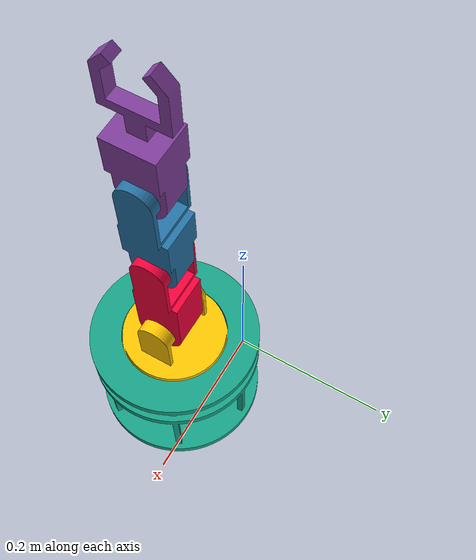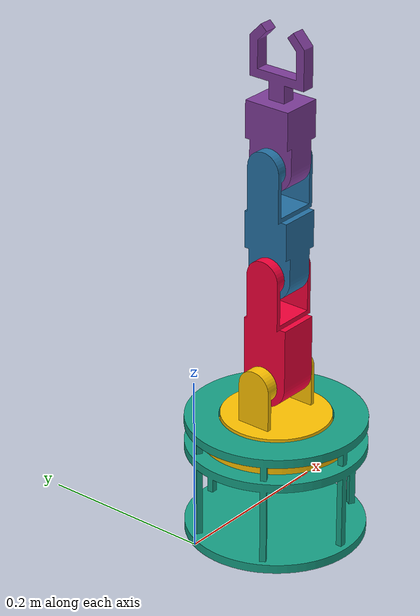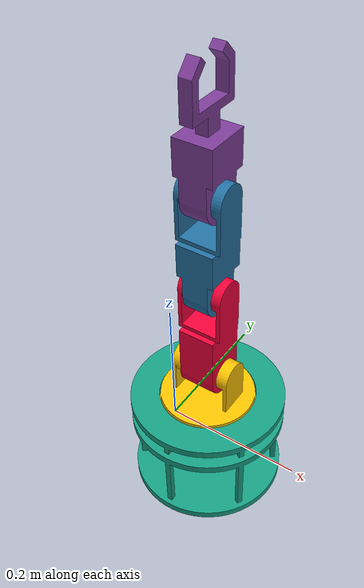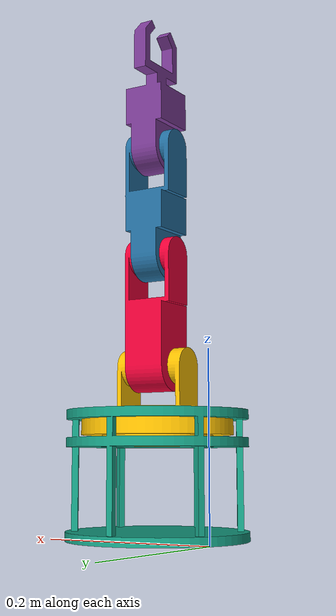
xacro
<?xml version="1.0"?>
<robot
  name="project_arm_1" xmlns:xacro="http://www.ros.org/wiki/xacro">

  <!-- Import all Gazebo-customization elements, including Gazebo colors -->
  <xacro:include filename="$(find project_arm_1)/urdf/project_arm_1.gazebo"/>

   <!-- Used for fixing robot to Gazebo 'base_link' -->
  <link name="world"/>

  <joint name="fixed" type="fixed">
    <parent link="world"/>
    <child link="base_robot"/>
  </joint>

  <link
    name="base_robot">
    <inertial>
      <origin
        xyz="0.087847 0.068109 0.042187"
        rpy="0 0 0" />
      <mass
        value="0.72938" />
      <inertia
        ixx="0.0046602"
        ixy="-1.6887E-19"
        ixz="3.379E-19"
        iyy="0.0044952"
        iyz="3.2874E-20"
        izz="0.0046602" />
    </inertial>
    <visual>
      <origin
        xyz="0 0 0"
        rpy="0 0 0" />
      <geometry>
        <mesh
          filename="package://project_arm_1/meshes/base_robot.STL" />
      </geometry>
      <material
        name="">
        <color
          rgba="0.08627 0.6274 0.5215 1" />
      </material>
    </visual>
    <collision>
      <origin
        xyz="0 0 0"
        rpy="0 0 0" />
      <geometry>
        <mesh
          filename="package://project_arm_1/meshes/base_robot.STL" />
      </geometry>
    </collision>
  </link>
  <link
    name="link_1">
    <inertial>
      <origin
        xyz="1.3878E-17 0 0.026561"
        rpy="0 0 0" />
      <mass
        value="0.72688" />
      <inertia
        ixx="0.0012487"
        ixy="7.2378E-22"
        ixz="2.3667E-20"
        iyy="0.0013043"
        iyz="-4.708E-20"
        izz="0.0018887" />
    </inertial>
    <visual>
      <origin
        xyz="0 0 0"
        rpy="0 0 0" />
      <geometry>
        <mesh
          filename="package://project_arm_1/meshes/link_1.STL" />
      </geometry>
      <material
        name="">
        <color
          rgba="0.99999 0.76471 1E-05 1" />
      </material>
    </visual>
    <collision>
      <origin
        xyz="0 0 0"
        rpy="0 0 0" />
      <geometry>
        <mesh
          filename="package://project_arm_1/meshes/link_1.STL" />
      </geometry>
    </collision>
  </link>
  <joint
    name="joint_link_1"
    type="continuous">
    <origin
      xyz="0.087847 -0.042187 0.1015"
      rpy="0 0 0" />
    <parent
      link="base_robot" />
    <child
      link="link_1" />
    <axis
      xyz="0 0 1" />
  </joint>
  <link
    name="link_2">
    <inertial>
      <origin
        xyz="-0.048042 0 -0.0015"
        rpy="0 0 0" />
      <mass
        value="0.28718" />
      <inertia
        ixx="0.00013287"
        ixy="-6.435E-20"
        ixz="-2.567E-21"
        iyy="0.00064561"
        iyz="1.7428E-21"
        izz="0.00063883" />
    </inertial>
    <visual>
      <origin
        xyz="0 0 0"
        rpy="0 0 0" />
      <geometry>
        <mesh
          filename="package://project_arm_1/meshes/link_2.STL" />
      </geometry>
      <material
        name="">
        <color
          rgba="0.95294 1E-05 0.22353 1" />
      </material>
    </visual>
    <collision>
      <origin
        xyz="0 0 0"
        rpy="0 0 0" />
      <geometry>
        <mesh
          filename="package://project_arm_1/meshes/link_2.STL" />
      </geometry>
    </collision>
  </link>
  <joint
    name="joint_link_2"
    type="continuous">
    <origin
      xyz="0 0 0.086"
      rpy="3.1416 1.5708 0" />
    <parent
      link="link_1" />
    <child
      link="link_2" />
    <axis
      xyz="0 0 1" />
  </joint>
  <link
    name="link_3">
    <inertial>
      <origin
        xyz="-0.053463 -1.3878E-17 -0.0015"
        rpy="0 0 0" />
      <mass
        value="0.25625" />
      <inertia
        ixx="0.00011215"
        ixy="-4.1158E-20"
        ixz="-9.4092E-21"
        iyy="0.00055529"
        iyz="8.3589E-21"
        izz="0.0005528" />
    </inertial>
    <visual>
      <origin
        xyz="0 0 0"
        rpy="0 0 0" />
      <geometry>
        <mesh
          filename="package://project_arm_1/meshes/link_3.STL" />
      </geometry>
      <material
        name="">
        <color
          rgba="0.14118 0.44314 0.63922 1" />
      </material>
    </visual>
    <collision>
      <origin
        xyz="0 0 0"
        rpy="0 0 0" />
      <geometry>
        <mesh
          filename="package://project_arm_1/meshes/link_3.STL" />
      </geometry>
    </collision>
  </link>
  <joint
    name="joint_link_3"
    type="continuous">
    <origin
      xyz="-0.125 0 0"
      rpy="0 0 0" />
    <parent
      link="link_2" />
    <child
      link="link_3" />
    <axis
      xyz="0 0 1" />
  </joint>
  <link
    name="link_4">
    <inertial>
      <origin
        xyz="-0.041905 -2.0817E-17 -0.0015"
        rpy="0 0 0" />
      <mass
        value="0.21479" />
      <inertia
        ixx="9.1304E-05"
        ixy="7.8644E-23"
        ixz="-2.5535E-20"
        iyy="0.00032596"
        iyz="-9.3564E-21"
        izz="0.00036238" />
    </inertial>
    <visual>
      <origin
        xyz="0 0 0"
        rpy="0 0 0" />
      <geometry>
        <mesh
          filename="package://project_arm_1/meshes/link_4.STL" />
      </geometry>
      <material
        name="">
        <color
          rgba="0.4902 0.23529 0.59608 1" />
      </material>
    </visual>
    <collision>
      <origin
        xyz="0 0 0"
        rpy="0 0 0" />
      <geometry>
        <mesh
          filename="package://project_arm_1/meshes/link_4.STL" />
      </geometry>
    </collision>
  </link>
  <joint
    name="joint_link_4"
    type="continuous">
    <origin
      xyz="-0.125 0 0"
      rpy="0 0 0" />
    <parent
      link="link_3" />
    <child
      link="link_4" />
    <axis
      xyz="0 0 1" />
  </joint>

  <gazebo>
    <plugin name="gazebo_ros_control" filename="libgazebo_ros_control.so">
      <robotNamespace>/arm_robot_1</robotNamespace>
      <robotSimType>gazebo_ros_control/DefaultRobotHWSim</robotSimType>
    </plugin>
  </gazebo>

  <gazebo reference="base_robot">
    <material>Gazebo/Green</material>
  </gazebo>

  <gazebo reference="link_1">
    <material>Gazebo/ZincYellow</material>
  </gazebo>

  <gazebo reference="link_2">
    <material>Gazebo/Red</material>
  </gazebo>

  <gazebo reference="link_3">
    <material>Gazebo/Turquoise</material>
  </gazebo>

  <gazebo reference="link_4">
    <material>Gazebo/Indigo</material>
  </gazebo>

  <transmission name="trans1">
    <type>transmission_interface/SimpleTransmission</type>
    <joint name="joint_link_1">
      <hardwareInterface>hardware_interface/EffortJointInterface</hardwareInterface>
    </joint>
    <actuator name="motor1">
      <hardwareInterface>hardware_interface/EffortJointInterface</hardwareInterface>
      <mechanicalReduction>1</mechanicalReduction>
    </actuator>
  </transmission>

  <transmission name="trans2">
    <type>transmission_interface/SimpleTransmission</type>
    <joint name="joint_link_2">
      <hardwareInterface>hardware_interface/EffortJointInterface</hardwareInterface>
    </joint>
    <actuator name="motor2">
      <hardwareInterface>hardware_interface/EffortJointInterface</hardwareInterface>
      <mechanicalReduction>1</mechanicalReduction>
    </actuator>
  </transmission>

  <transmission name="trans3">
    <type>transmission_interface/SimpleTransmission</type>
    <joint name="joint_link_3">
      <hardwareInterface>hardware_interface/EffortJointInterface</hardwareInterface>
    </joint>
    <actuator name="motor3">
      <hardwareInterface>hardware_interface/EffortJointInterface</hardwareInterface>
      <mechanicalReduction>1</mechanicalReduction>
    </actuator>
  </transmission>

  <transmission name="trans4">
    <type>transmission_interface/SimpleTransmission</type>
    <joint name="joint_link_4">
      <hardwareInterface>hardware_interface/EffortJointInterface</hardwareInterface>
    </joint>
    <actuator name="motor4">
      <hardwareInterface>hardware_interface/EffortJointInterface</hardwareInterface>
      <mechanicalReduction>1</mechanicalReduction>
    </actuator>
  </transmission>

</robot>
